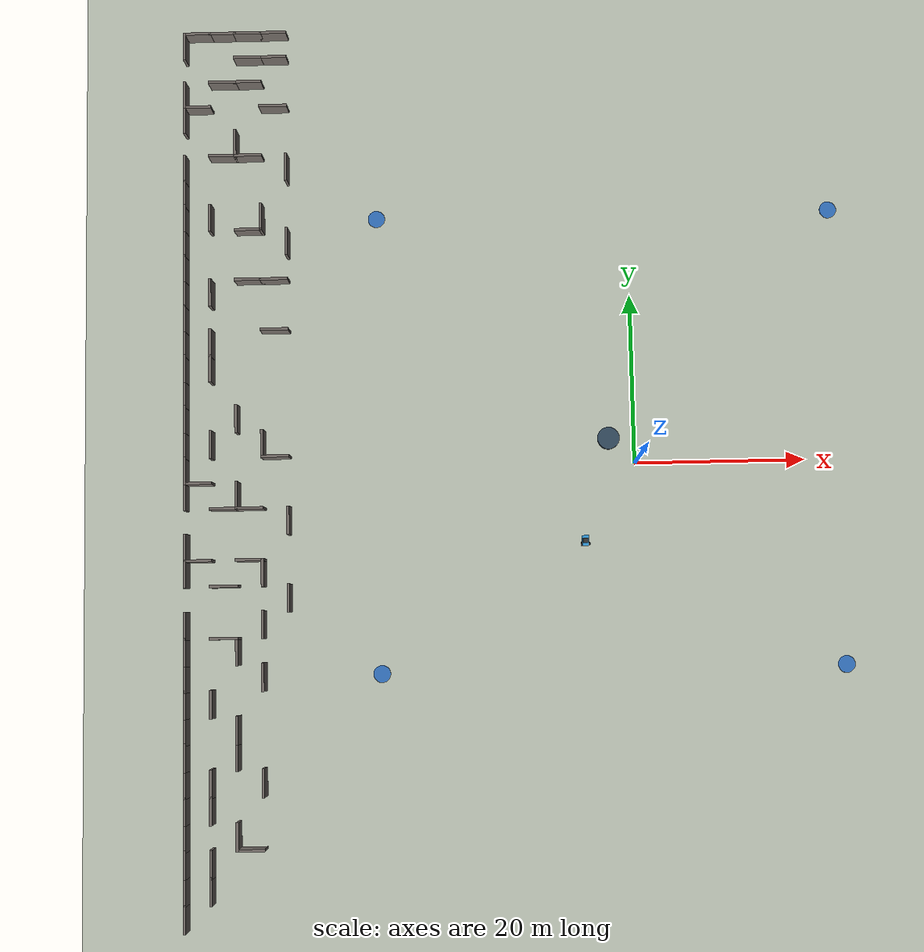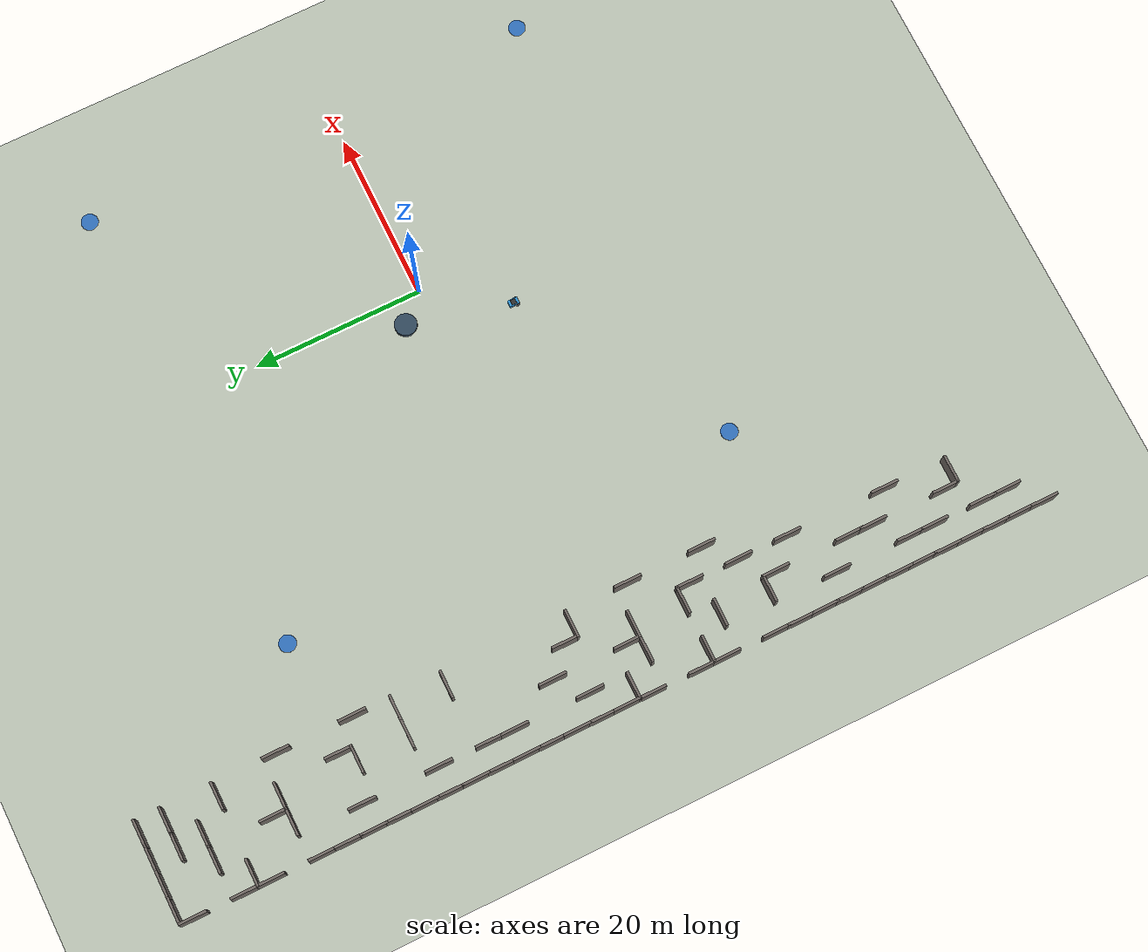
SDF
<sdf version="1.9">
 <world name="swap_world">
  <model name="ground_plane">
   <static>true</static>
   <link name="link">
    <collision name="collision">
     <geometry><plane><normal>0 0 1</normal><size>125 125</size></plane></geometry>
    </collision>
    <visual name="visual">
     <geometry><plane><normal>0 0 1</normal><size>125 125</size></plane></geometry>
     <material><ambient>0.75 0.78 0.72 1</ambient><diffuse>0.75 0.78 0.72 1</diffuse></material>
    </visual>
   </link>
  </model>
  <model name="warehouse">
   <static>true</static>
   <link name="link">
    <pose>-3.00 3.00 0.25 0 0 0</pose>
    <visual name="v">
     <geometry><cylinder><radius>1.3</radius><length>0.5</length></cylinder></geometry>
     <material><ambient>0.2 0.29 0.37 1</ambient><diffuse>0.2 0.29 0.37 1</diffuse></material>
    </visual>
   </link>
  </model>
  <model name="pad_0">
   <static>true</static>
   <link name="link">
    <pose>-30.00 30.00 0.01 0 0 0</pose>
    <visual name="visual">
     <geometry><cylinder><radius>1.0</radius><length>0.02</length></cylinder></geometry>
     <material><ambient>0.2 0.45 0.75 1</ambient><diffuse>0.2 0.45 0.75 1</diffuse></material>
    </visual>
   </link>
  </model>
  <model name="pad_1">
   <static>true</static>
   <link name="link">
    <pose>24.00 30.00 0.01 0 0 0</pose>
    <visual name="visual">
     <geometry><cylinder><radius>1.0</radius><length>0.02</length></cylinder></geometry>
     <material><ambient>0.2 0.45 0.75 1</ambient><diffuse>0.2 0.45 0.75 1</diffuse></material>
    </visual>
   </link>
  </model>
  <model name="pad_2">
   <static>true</static>
   <link name="link">
    <pose>-30.00 -24.00 0.01 0 0 0</pose>
    <visual name="visual">
     <geometry><cylinder><radius>1.0</radius><length>0.02</length></cylinder></geometry>
     <material><ambient>0.2 0.45 0.75 1</ambient><diffuse>0.2 0.45 0.75 1</diffuse></material>
    </visual>
   </link>
  </model>
  <model name="pad_3">
   <static>true</static>
   <link name="link">
    <pose>24.00 -24.00 0.01 0 0 0</pose>
    <visual name="visual">
     <geometry><cylinder><radius>1.0</radius><length>0.02</length></cylinder></geometry>
     <material><ambient>0.2 0.45 0.75 1</ambient><diffuse>0.2 0.45 0.75 1</diffuse></material>
    </visual>
   </link>
  </model>
  <model name="wall_0">
   <static>true</static>
   <link name="l">
    <pose>-52.50 51.00 1.25 0 0 1.5708</pose>
    <collision name="c"><geometry><box><size>3.30 0.3 2.5</size></box></geometry></collision>
    <visual name="v">
     <geometry><box><size>3.30 0.3 2.5</size></box></geometry>
     <material><ambient>0.45 0.42 0.4 1</ambient><diffuse>0.45 0.42 0.4 1</diffuse></material>
    </visual>
   </link>
  </model>
  <model name="wall_1">
   <static>true</static>
   <link name="l">
    <pose>-51.00 52.50 1.25 0 0 0.0000</pose>
    <collision name="c"><geometry><box><size>3.30 0.3 2.5</size></box></geometry></collision>
    <visual name="v">
     <geometry><box><size>3.30 0.3 2.5</size></box></geometry>
     <material><ambient>0.45 0.42 0.4 1</ambient><diffuse>0.45 0.42 0.4 1</diffuse></material>
    </visual>
   </link>
  </model>
  <model name="wall_2">
   <static>true</static>
   <link name="l">
    <pose>-52.50 45.00 1.25 0 0 1.5708</pose>
    <collision name="c"><geometry><box><size>3.30 0.3 2.5</size></box></geometry></collision>
    <visual name="v">
     <geometry><box><size>3.30 0.3 2.5</size></box></geometry>
     <material><ambient>0.45 0.42 0.4 1</ambient><diffuse>0.45 0.42 0.4 1</diffuse></material>
    </visual>
   </link>
  </model>
  <model name="wall_3">
   <static>true</static>
   <link name="l">
    <pose>-52.50 42.00 1.25 0 0 1.5708</pose>
    <collision name="c"><geometry><box><size>3.30 0.3 2.5</size></box></geometry></collision>
    <visual name="v">
     <geometry><box><size>3.30 0.3 2.5</size></box></geometry>
     <material><ambient>0.45 0.42 0.4 1</ambient><diffuse>0.45 0.42 0.4 1</diffuse></material>
    </visual>
   </link>
  </model>
  <model name="wall_4">
   <static>true</static>
   <link name="l">
    <pose>-51.00 43.50 1.25 0 0 0.0000</pose>
    <collision name="c"><geometry><box><size>3.30 0.3 2.5</size></box></geometry></collision>
    <visual name="v">
     <geometry><box><size>3.30 0.3 2.5</size></box></geometry>
     <material><ambient>0.45 0.42 0.4 1</ambient><diffuse>0.45 0.42 0.4 1</diffuse></material>
    </visual>
   </link>
  </model>
  <model name="wall_5">
   <static>true</static>
   <link name="l">
    <pose>-52.50 36.00 1.25 0 0 1.5708</pose>
    <collision name="c"><geometry><box><size>3.30 0.3 2.5</size></box></geometry></collision>
    <visual name="v">
     <geometry><box><size>3.30 0.3 2.5</size></box></geometry>
     <material><ambient>0.45 0.42 0.4 1</ambient><diffuse>0.45 0.42 0.4 1</diffuse></material>
    </visual>
   </link>
  </model>
  <model name="wall_6">
   <static>true</static>
   <link name="l">
    <pose>-52.50 33.00 1.25 0 0 1.5708</pose>
    <collision name="c"><geometry><box><size>3.30 0.3 2.5</size></box></geometry></collision>
    <visual name="v">
     <geometry><box><size>3.30 0.3 2.5</size></box></geometry>
     <material><ambient>0.45 0.42 0.4 1</ambient><diffuse>0.45 0.42 0.4 1</diffuse></material>
    </visual>
   </link>
  </model>
  <model name="wall_7">
   <static>true</static>
   <link name="l">
    <pose>-49.50 30.00 1.25 0 0 1.5708</pose>
    <collision name="c"><geometry><box><size>3.30 0.3 2.5</size></box></geometry></collision>
    <visual name="v">
     <geometry><box><size>3.30 0.3 2.5</size></box></geometry>
     <material><ambient>0.45 0.42 0.4 1</ambient><diffuse>0.45 0.42 0.4 1</diffuse></material>
    </visual>
   </link>
  </model>
  <model name="wall_8">
   <static>true</static>
   <link name="l">
    <pose>-52.50 30.00 1.25 0 0 1.5708</pose>
    <collision name="c"><geometry><box><size>3.30 0.3 2.5</size></box></geometry></collision>
    <visual name="v">
     <geometry><box><size>3.30 0.3 2.5</size></box></geometry>
     <material><ambient>0.45 0.42 0.4 1</ambient><diffuse>0.45 0.42 0.4 1</diffuse></material>
    </visual>
   </link>
  </model>
  <model name="wall_9">
   <static>true</static>
   <link name="l">
    <pose>-52.50 27.00 1.25 0 0 1.5708</pose>
    <collision name="c"><geometry><box><size>3.30 0.3 2.5</size></box></geometry></collision>
    <visual name="v">
     <geometry><box><size>3.30 0.3 2.5</size></box></geometry>
     <material><ambient>0.45 0.42 0.4 1</ambient><diffuse>0.45 0.42 0.4 1</diffuse></material>
    </visual>
   </link>
  </model>
  <model name="wall_10">
   <static>true</static>
   <link name="l">
    <pose>-52.50 24.00 1.25 0 0 1.5708</pose>
    <collision name="c"><geometry><box><size>3.30 0.3 2.5</size></box></geometry></collision>
    <visual name="v">
     <geometry><box><size>3.30 0.3 2.5</size></box></geometry>
     <material><ambient>0.45 0.42 0.4 1</ambient><diffuse>0.45 0.42 0.4 1</diffuse></material>
    </visual>
   </link>
  </model>
  <model name="wall_11">
   <static>true</static>
   <link name="l">
    <pose>-49.50 21.00 1.25 0 0 1.5708</pose>
    <collision name="c"><geometry><box><size>3.30 0.3 2.5</size></box></geometry></collision>
    <visual name="v">
     <geometry><box><size>3.30 0.3 2.5</size></box></geometry>
     <material><ambient>0.45 0.42 0.4 1</ambient><diffuse>0.45 0.42 0.4 1</diffuse></material>
    </visual>
   </link>
  </model>
  <model name="wall_12">
   <static>true</static>
   <link name="l">
    <pose>-52.50 21.00 1.25 0 0 1.5708</pose>
    <collision name="c"><geometry><box><size>3.30 0.3 2.5</size></box></geometry></collision>
    <visual name="v">
     <geometry><box><size>3.30 0.3 2.5</size></box></geometry>
     <material><ambient>0.45 0.42 0.4 1</ambient><diffuse>0.45 0.42 0.4 1</diffuse></material>
    </visual>
   </link>
  </model>
  <model name="wall_13">
   <static>true</static>
   <link name="l">
    <pose>-52.50 18.00 1.25 0 0 1.5708</pose>
    <collision name="c"><geometry><box><size>3.30 0.3 2.5</size></box></geometry></collision>
    <visual name="v">
     <geometry><box><size>3.30 0.3 2.5</size></box></geometry>
     <material><ambient>0.45 0.42 0.4 1</ambient><diffuse>0.45 0.42 0.4 1</diffuse></material>
    </visual>
   </link>
  </model>
  <model name="wall_14">
   <static>true</static>
   <link name="l">
    <pose>-49.50 15.00 1.25 0 0 1.5708</pose>
    <collision name="c"><geometry><box><size>3.30 0.3 2.5</size></box></geometry></collision>
    <visual name="v">
     <geometry><box><size>3.30 0.3 2.5</size></box></geometry>
     <material><ambient>0.45 0.42 0.4 1</ambient><diffuse>0.45 0.42 0.4 1</diffuse></material>
    </visual>
   </link>
  </model>
  <model name="wall_15">
   <static>true</static>
   <link name="l">
    <pose>-52.50 15.00 1.25 0 0 1.5708</pose>
    <collision name="c"><geometry><box><size>3.30 0.3 2.5</size></box></geometry></collision>
    <visual name="v">
     <geometry><box><size>3.30 0.3 2.5</size></box></geometry>
     <material><ambient>0.45 0.42 0.4 1</ambient><diffuse>0.45 0.42 0.4 1</diffuse></material>
    </visual>
   </link>
  </model>
  <model name="wall_16">
   <static>true</static>
   <link name="l">
    <pose>-49.50 12.00 1.25 0 0 1.5708</pose>
    <collision name="c"><geometry><box><size>3.30 0.3 2.5</size></box></geometry></collision>
    <visual name="v">
     <geometry><box><size>3.30 0.3 2.5</size></box></geometry>
     <material><ambient>0.45 0.42 0.4 1</ambient><diffuse>0.45 0.42 0.4 1</diffuse></material>
    </visual>
   </link>
  </model>
  <model name="wall_17">
   <static>true</static>
   <link name="l">
    <pose>-52.50 12.00 1.25 0 0 1.5708</pose>
    <collision name="c"><geometry><box><size>3.30 0.3 2.5</size></box></geometry></collision>
    <visual name="v">
     <geometry><box><size>3.30 0.3 2.5</size></box></geometry>
     <material><ambient>0.45 0.42 0.4 1</ambient><diffuse>0.45 0.42 0.4 1</diffuse></material>
    </visual>
   </link>
  </model>
  <model name="wall_18">
   <static>true</static>
   <link name="l">
    <pose>-52.50 9.00 1.25 0 0 1.5708</pose>
    <collision name="c"><geometry><box><size>3.30 0.3 2.5</size></box></geometry></collision>
    <visual name="v">
     <geometry><box><size>3.30 0.3 2.5</size></box></geometry>
     <material><ambient>0.45 0.42 0.4 1</ambient><diffuse>0.45 0.42 0.4 1</diffuse></material>
    </visual>
   </link>
  </model>
  <model name="wall_19">
   <static>true</static>
   <link name="l">
    <pose>-52.50 6.00 1.25 0 0 1.5708</pose>
    <collision name="c"><geometry><box><size>3.30 0.3 2.5</size></box></geometry></collision>
    <visual name="v">
     <geometry><box><size>3.30 0.3 2.5</size></box></geometry>
     <material><ambient>0.45 0.42 0.4 1</ambient><diffuse>0.45 0.42 0.4 1</diffuse></material>
    </visual>
   </link>
  </model>
  <model name="wall_20">
   <static>true</static>
   <link name="l">
    <pose>-49.50 3.00 1.25 0 0 1.5708</pose>
    <collision name="c"><geometry><box><size>3.30 0.3 2.5</size></box></geometry></collision>
    <visual name="v">
     <geometry><box><size>3.30 0.3 2.5</size></box></geometry>
     <material><ambient>0.45 0.42 0.4 1</ambient><diffuse>0.45 0.42 0.4 1</diffuse></material>
    </visual>
   </link>
  </model>
  <model name="wall_21">
   <static>true</static>
   <link name="l">
    <pose>-52.50 3.00 1.25 0 0 1.5708</pose>
    <collision name="c"><geometry><box><size>3.30 0.3 2.5</size></box></geometry></collision>
    <visual name="v">
     <geometry><box><size>3.30 0.3 2.5</size></box></geometry>
     <material><ambient>0.45 0.42 0.4 1</ambient><diffuse>0.45 0.42 0.4 1</diffuse></material>
    </visual>
   </link>
  </model>
  <model name="wall_22">
   <static>true</static>
   <link name="l">
    <pose>-52.50 -0.00 1.25 0 0 1.5708</pose>
    <collision name="c"><geometry><box><size>3.30 0.3 2.5</size></box></geometry></collision>
    <visual name="v">
     <geometry><box><size>3.30 0.3 2.5</size></box></geometry>
     <material><ambient>0.45 0.42 0.4 1</ambient><diffuse>0.45 0.42 0.4 1</diffuse></material>
    </visual>
   </link>
  </model>
  <model name="wall_23">
   <static>true</static>
   <link name="l">
    <pose>-52.50 -3.00 1.25 0 0 1.5708</pose>
    <collision name="c"><geometry><box><size>3.30 0.3 2.5</size></box></geometry></collision>
    <visual name="v">
     <geometry><box><size>3.30 0.3 2.5</size></box></geometry>
     <material><ambient>0.45 0.42 0.4 1</ambient><diffuse>0.45 0.42 0.4 1</diffuse></material>
    </visual>
   </link>
  </model>
  <model name="wall_24">
   <static>true</static>
   <link name="l">
    <pose>-51.00 -1.50 1.25 0 0 0.0000</pose>
    <collision name="c"><geometry><box><size>3.30 0.3 2.5</size></box></geometry></collision>
    <visual name="v">
     <geometry><box><size>3.30 0.3 2.5</size></box></geometry>
     <material><ambient>0.45 0.42 0.4 1</ambient><diffuse>0.45 0.42 0.4 1</diffuse></material>
    </visual>
   </link>
  </model>
  <model name="wall_25">
   <static>true</static>
   <link name="l">
    <pose>-52.50 -9.00 1.25 0 0 1.5708</pose>
    <collision name="c"><geometry><box><size>3.30 0.3 2.5</size></box></geometry></collision>
    <visual name="v">
     <geometry><box><size>3.30 0.3 2.5</size></box></geometry>
     <material><ambient>0.45 0.42 0.4 1</ambient><diffuse>0.45 0.42 0.4 1</diffuse></material>
    </visual>
   </link>
  </model>
  <model name="wall_26">
   <static>true</static>
   <link name="l">
    <pose>-52.50 -12.00 1.25 0 0 1.5708</pose>
    <collision name="c"><geometry><box><size>3.30 0.3 2.5</size></box></geometry></collision>
    <visual name="v">
     <geometry><box><size>3.30 0.3 2.5</size></box></geometry>
     <material><ambient>0.45 0.42 0.4 1</ambient><diffuse>0.45 0.42 0.4 1</diffuse></material>
    </visual>
   </link>
  </model>
  <model name="wall_27">
   <static>true</static>
   <link name="l">
    <pose>-51.00 -10.50 1.25 0 0 0.0000</pose>
    <collision name="c"><geometry><box><size>3.30 0.3 2.5</size></box></geometry></collision>
    <visual name="v">
     <geometry><box><size>3.30 0.3 2.5</size></box></geometry>
     <material><ambient>0.45 0.42 0.4 1</ambient><diffuse>0.45 0.42 0.4 1</diffuse></material>
    </visual>
   </link>
  </model>
  <model name="wall_28">
   <static>true</static>
   <link name="l">
    <pose>-52.50 -18.00 1.25 0 0 1.5708</pose>
    <collision name="c"><geometry><box><size>3.30 0.3 2.5</size></box></geometry></collision>
    <visual name="v">
     <geometry><box><size>3.30 0.3 2.5</size></box></geometry>
     <material><ambient>0.45 0.42 0.4 1</ambient><diffuse>0.45 0.42 0.4 1</diffuse></material>
    </visual>
   </link>
  </model>
  <model name="wall_29">
   <static>true</static>
   <link name="l">
    <pose>-52.50 -21.00 1.25 0 0 1.5708</pose>
    <collision name="c"><geometry><box><size>3.30 0.3 2.5</size></box></geometry></collision>
    <visual name="v">
     <geometry><box><size>3.30 0.3 2.5</size></box></geometry>
     <material><ambient>0.45 0.42 0.4 1</ambient><diffuse>0.45 0.42 0.4 1</diffuse></material>
    </visual>
   </link>
  </model>
  <model name="wall_30">
   <static>true</static>
   <link name="l">
    <pose>-52.50 -24.00 1.25 0 0 1.5708</pose>
    <collision name="c"><geometry><box><size>3.30 0.3 2.5</size></box></geometry></collision>
    <visual name="v">
     <geometry><box><size>3.30 0.3 2.5</size></box></geometry>
     <material><ambient>0.45 0.42 0.4 1</ambient><diffuse>0.45 0.42 0.4 1</diffuse></material>
    </visual>
   </link>
  </model>
  <model name="wall_31">
   <static>true</static>
   <link name="l">
    <pose>-49.50 -27.00 1.25 0 0 1.5708</pose>
    <collision name="c"><geometry><box><size>3.30 0.3 2.5</size></box></geometry></collision>
    <visual name="v">
     <geometry><box><size>3.30 0.3 2.5</size></box></geometry>
     <material><ambient>0.45 0.42 0.4 1</ambient><diffuse>0.45 0.42 0.4 1</diffuse></material>
    </visual>
   </link>
  </model>
  <model name="wall_32">
   <static>true</static>
   <link name="l">
    <pose>-52.50 -27.00 1.25 0 0 1.5708</pose>
    <collision name="c"><geometry><box><size>3.30 0.3 2.5</size></box></geometry></collision>
    <visual name="v">
     <geometry><box><size>3.30 0.3 2.5</size></box></geometry>
     <material><ambient>0.45 0.42 0.4 1</ambient><diffuse>0.45 0.42 0.4 1</diffuse></material>
    </visual>
   </link>
  </model>
  <model name="wall_33">
   <static>true</static>
   <link name="l">
    <pose>-52.50 -30.00 1.25 0 0 1.5708</pose>
    <collision name="c"><geometry><box><size>3.30 0.3 2.5</size></box></geometry></collision>
    <visual name="v">
     <geometry><box><size>3.30 0.3 2.5</size></box></geometry>
     <material><ambient>0.45 0.42 0.4 1</ambient><diffuse>0.45 0.42 0.4 1</diffuse></material>
    </visual>
   </link>
  </model>
  <model name="wall_34">
   <static>true</static>
   <link name="l">
    <pose>-52.50 -33.00 1.25 0 0 1.5708</pose>
    <collision name="c"><geometry><box><size>3.30 0.3 2.5</size></box></geometry></collision>
    <visual name="v">
     <geometry><box><size>3.30 0.3 2.5</size></box></geometry>
     <material><ambient>0.45 0.42 0.4 1</ambient><diffuse>0.45 0.42 0.4 1</diffuse></material>
    </visual>
   </link>
  </model>
  <model name="wall_35">
   <static>true</static>
   <link name="l">
    <pose>-49.50 -36.00 1.25 0 0 1.5708</pose>
    <collision name="c"><geometry><box><size>3.30 0.3 2.5</size></box></geometry></collision>
    <visual name="v">
     <geometry><box><size>3.30 0.3 2.5</size></box></geometry>
     <material><ambient>0.45 0.42 0.4 1</ambient><diffuse>0.45 0.42 0.4 1</diffuse></material>
    </visual>
   </link>
  </model>
  <model name="wall_36">
   <static>true</static>
   <link name="l">
    <pose>-52.50 -36.00 1.25 0 0 1.5708</pose>
    <collision name="c"><geometry><box><size>3.30 0.3 2.5</size></box></geometry></collision>
    <visual name="v">
     <geometry><box><size>3.30 0.3 2.5</size></box></geometry>
     <material><ambient>0.45 0.42 0.4 1</ambient><diffuse>0.45 0.42 0.4 1</diffuse></material>
    </visual>
   </link>
  </model>
  <model name="wall_37">
   <static>true</static>
   <link name="l">
    <pose>-49.50 -39.00 1.25 0 0 1.5708</pose>
    <collision name="c"><geometry><box><size>3.30 0.3 2.5</size></box></geometry></collision>
    <visual name="v">
     <geometry><box><size>3.30 0.3 2.5</size></box></geometry>
     <material><ambient>0.45 0.42 0.4 1</ambient><diffuse>0.45 0.42 0.4 1</diffuse></material>
    </visual>
   </link>
  </model>
  <model name="wall_38">
   <static>true</static>
   <link name="l">
    <pose>-52.50 -39.00 1.25 0 0 1.5708</pose>
    <collision name="c"><geometry><box><size>3.30 0.3 2.5</size></box></geometry></collision>
    <visual name="v">
     <geometry><box><size>3.30 0.3 2.5</size></box></geometry>
     <material><ambient>0.45 0.42 0.4 1</ambient><diffuse>0.45 0.42 0.4 1</diffuse></material>
    </visual>
   </link>
  </model>
  <model name="wall_39">
   <static>true</static>
   <link name="l">
    <pose>-52.50 -42.00 1.25 0 0 1.5708</pose>
    <collision name="c"><geometry><box><size>3.30 0.3 2.5</size></box></geometry></collision>
    <visual name="v">
     <geometry><box><size>3.30 0.3 2.5</size></box></geometry>
     <material><ambient>0.45 0.42 0.4 1</ambient><diffuse>0.45 0.42 0.4 1</diffuse></material>
    </visual>
   </link>
  </model>
  <model name="wall_40">
   <static>true</static>
   <link name="l">
    <pose>-49.50 -45.00 1.25 0 0 1.5708</pose>
    <collision name="c"><geometry><box><size>3.30 0.3 2.5</size></box></geometry></collision>
    <visual name="v">
     <geometry><box><size>3.30 0.3 2.5</size></box></geometry>
     <material><ambient>0.45 0.42 0.4 1</ambient><diffuse>0.45 0.42 0.4 1</diffuse></material>
    </visual>
   </link>
  </model>
  <model name="wall_41">
   <static>true</static>
   <link name="l">
    <pose>-52.50 -45.00 1.25 0 0 1.5708</pose>
    <collision name="c"><geometry><box><size>3.30 0.3 2.5</size></box></geometry></collision>
    <visual name="v">
     <geometry><box><size>3.30 0.3 2.5</size></box></geometry>
     <material><ambient>0.45 0.42 0.4 1</ambient><diffuse>0.45 0.42 0.4 1</diffuse></material>
    </visual>
   </link>
  </model>
  <model name="wall_42">
   <static>true</static>
   <link name="l">
    <pose>-49.50 -48.00 1.25 0 0 1.5708</pose>
    <collision name="c"><geometry><box><size>3.30 0.3 2.5</size></box></geometry></collision>
    <visual name="v">
     <geometry><box><size>3.30 0.3 2.5</size></box></geometry>
     <material><ambient>0.45 0.42 0.4 1</ambient><diffuse>0.45 0.42 0.4 1</diffuse></material>
    </visual>
   </link>
  </model>
  <model name="wall_43">
   <static>true</static>
   <link name="l">
    <pose>-52.50 -48.00 1.25 0 0 1.5708</pose>
    <collision name="c"><geometry><box><size>3.30 0.3 2.5</size></box></geometry></collision>
    <visual name="v">
     <geometry><box><size>3.30 0.3 2.5</size></box></geometry>
     <material><ambient>0.45 0.42 0.4 1</ambient><diffuse>0.45 0.42 0.4 1</diffuse></material>
    </visual>
   </link>
  </model>
  <model name="wall_44">
   <static>true</static>
   <link name="l">
    <pose>-52.50 -51.00 1.25 0 0 1.5708</pose>
    <collision name="c"><geometry><box><size>3.30 0.3 2.5</size></box></geometry></collision>
    <visual name="v">
     <geometry><box><size>3.30 0.3 2.5</size></box></geometry>
     <material><ambient>0.45 0.42 0.4 1</ambient><diffuse>0.45 0.42 0.4 1</diffuse></material>
    </visual>
   </link>
  </model>
  <model name="wall_45">
   <static>true</static>
   <link name="l">
    <pose>-48.00 52.50 1.25 0 0 0.0000</pose>
    <collision name="c"><geometry><box><size>3.30 0.3 2.5</size></box></geometry></collision>
    <visual name="v">
     <geometry><box><size>3.30 0.3 2.5</size></box></geometry>
     <material><ambient>0.45 0.42 0.4 1</ambient><diffuse>0.45 0.42 0.4 1</diffuse></material>
    </visual>
   </link>
  </model>
  <model name="wall_46">
   <static>true</static>
   <link name="l">
    <pose>-48.00 46.50 1.25 0 0 0.0000</pose>
    <collision name="c"><geometry><box><size>3.30 0.3 2.5</size></box></geometry></collision>
    <visual name="v">
     <geometry><box><size>3.30 0.3 2.5</size></box></geometry>
     <material><ambient>0.45 0.42 0.4 1</ambient><diffuse>0.45 0.42 0.4 1</diffuse></material>
    </visual>
   </link>
  </model>
  <model name="wall_47">
   <static>true</static>
   <link name="l">
    <pose>-46.50 39.00 1.25 0 0 1.5708</pose>
    <collision name="c"><geometry><box><size>3.30 0.3 2.5</size></box></geometry></collision>
    <visual name="v">
     <geometry><box><size>3.30 0.3 2.5</size></box></geometry>
     <material><ambient>0.45 0.42 0.4 1</ambient><diffuse>0.45 0.42 0.4 1</diffuse></material>
    </visual>
   </link>
  </model>
  <model name="wall_48">
   <static>true</static>
   <link name="l">
    <pose>-48.00 37.50 1.25 0 0 0.0000</pose>
    <collision name="c"><geometry><box><size>3.30 0.3 2.5</size></box></geometry></collision>
    <visual name="v">
     <geometry><box><size>3.30 0.3 2.5</size></box></geometry>
     <material><ambient>0.45 0.42 0.4 1</ambient><diffuse>0.45 0.42 0.4 1</diffuse></material>
    </visual>
   </link>
  </model>
  <model name="wall_49">
   <static>true</static>
   <link name="l">
    <pose>-46.50 6.00 1.25 0 0 1.5708</pose>
    <collision name="c"><geometry><box><size>3.30 0.3 2.5</size></box></geometry></collision>
    <visual name="v">
     <geometry><box><size>3.30 0.3 2.5</size></box></geometry>
     <material><ambient>0.45 0.42 0.4 1</ambient><diffuse>0.45 0.42 0.4 1</diffuse></material>
    </visual>
   </link>
  </model>
  <model name="wall_50">
   <static>true</static>
   <link name="l">
    <pose>-46.50 -3.00 1.25 0 0 1.5708</pose>
    <collision name="c"><geometry><box><size>3.30 0.3 2.5</size></box></geometry></collision>
    <visual name="v">
     <geometry><box><size>3.30 0.3 2.5</size></box></geometry>
     <material><ambient>0.45 0.42 0.4 1</ambient><diffuse>0.45 0.42 0.4 1</diffuse></material>
    </visual>
   </link>
  </model>
  <model name="wall_51">
   <static>true</static>
   <link name="l">
    <pose>-48.00 -4.50 1.25 0 0 0.0000</pose>
    <collision name="c"><geometry><box><size>3.30 0.3 2.5</size></box></geometry></collision>
    <visual name="v">
     <geometry><box><size>3.30 0.3 2.5</size></box></geometry>
     <material><ambient>0.45 0.42 0.4 1</ambient><diffuse>0.45 0.42 0.4 1</diffuse></material>
    </visual>
   </link>
  </model>
  <model name="wall_52">
   <static>true</static>
   <link name="l">
    <pose>-48.00 -13.50 1.25 0 0 0.0000</pose>
    <collision name="c"><geometry><box><size>3.30 0.3 2.5</size></box></geometry></collision>
    <visual name="v">
     <geometry><box><size>3.30 0.3 2.5</size></box></geometry>
     <material><ambient>0.45 0.42 0.4 1</ambient><diffuse>0.45 0.42 0.4 1</diffuse></material>
    </visual>
   </link>
  </model>
  <model name="wall_53">
   <static>true</static>
   <link name="l">
    <pose>-46.50 -21.00 1.25 0 0 1.5708</pose>
    <collision name="c"><geometry><box><size>3.30 0.3 2.5</size></box></geometry></collision>
    <visual name="v">
     <geometry><box><size>3.30 0.3 2.5</size></box></geometry>
     <material><ambient>0.45 0.42 0.4 1</ambient><diffuse>0.45 0.42 0.4 1</diffuse></material>
    </visual>
   </link>
  </model>
  <model name="wall_54">
   <static>true</static>
   <link name="l">
    <pose>-48.00 -19.50 1.25 0 0 0.0000</pose>
    <collision name="c"><geometry><box><size>3.30 0.3 2.5</size></box></geometry></collision>
    <visual name="v">
     <geometry><box><size>3.30 0.3 2.5</size></box></geometry>
     <material><ambient>0.45 0.42 0.4 1</ambient><diffuse>0.45 0.42 0.4 1</diffuse></material>
    </visual>
   </link>
  </model>
  <model name="wall_55">
   <static>true</static>
   <link name="l">
    <pose>-46.50 -30.00 1.25 0 0 1.5708</pose>
    <collision name="c"><geometry><box><size>3.30 0.3 2.5</size></box></geometry></collision>
    <visual name="v">
     <geometry><box><size>3.30 0.3 2.5</size></box></geometry>
     <material><ambient>0.45 0.42 0.4 1</ambient><diffuse>0.45 0.42 0.4 1</diffuse></material>
    </visual>
   </link>
  </model>
  <model name="wall_56">
   <static>true</static>
   <link name="l">
    <pose>-46.50 -33.00 1.25 0 0 1.5708</pose>
    <collision name="c"><geometry><box><size>3.30 0.3 2.5</size></box></geometry></collision>
    <visual name="v">
     <geometry><box><size>3.30 0.3 2.5</size></box></geometry>
     <material><ambient>0.45 0.42 0.4 1</ambient><diffuse>0.45 0.42 0.4 1</diffuse></material>
    </visual>
   </link>
  </model>
  <model name="wall_57">
   <static>true</static>
   <link name="l">
    <pose>-46.50 -42.00 1.25 0 0 1.5708</pose>
    <collision name="c"><geometry><box><size>3.30 0.3 2.5</size></box></geometry></collision>
    <visual name="v">
     <geometry><box><size>3.30 0.3 2.5</size></box></geometry>
     <material><ambient>0.45 0.42 0.4 1</ambient><diffuse>0.45 0.42 0.4 1</diffuse></material>
    </visual>
   </link>
  </model>
  <model name="wall_58">
   <static>true</static>
   <link name="l">
    <pose>-45.00 52.50 1.25 0 0 0.0000</pose>
    <collision name="c"><geometry><box><size>3.30 0.3 2.5</size></box></geometry></collision>
    <visual name="v">
     <geometry><box><size>3.30 0.3 2.5</size></box></geometry>
     <material><ambient>0.45 0.42 0.4 1</ambient><diffuse>0.45 0.42 0.4 1</diffuse></material>
    </visual>
   </link>
  </model>
  <model name="wall_59">
   <static>true</static>
   <link name="l">
    <pose>-45.00 49.50 1.25 0 0 0.0000</pose>
    <collision name="c"><geometry><box><size>3.30 0.3 2.5</size></box></geometry></collision>
    <visual name="v">
     <geometry><box><size>3.30 0.3 2.5</size></box></geometry>
     <material><ambient>0.45 0.42 0.4 1</ambient><diffuse>0.45 0.42 0.4 1</diffuse></material>
    </visual>
   </link>
  </model>
  <model name="wall_60">
   <static>true</static>
   <link name="l">
    <pose>-45.00 46.50 1.25 0 0 0.0000</pose>
    <collision name="c"><geometry><box><size>3.30 0.3 2.5</size></box></geometry></collision>
    <visual name="v">
     <geometry><box><size>3.30 0.3 2.5</size></box></geometry>
     <material><ambient>0.45 0.42 0.4 1</ambient><diffuse>0.45 0.42 0.4 1</diffuse></material>
    </visual>
   </link>
  </model>
  <model name="wall_61">
   <static>true</static>
   <link name="l">
    <pose>-45.00 37.50 1.25 0 0 0.0000</pose>
    <collision name="c"><geometry><box><size>3.30 0.3 2.5</size></box></geometry></collision>
    <visual name="v">
     <geometry><box><size>3.30 0.3 2.5</size></box></geometry>
     <material><ambient>0.45 0.42 0.4 1</ambient><diffuse>0.45 0.42 0.4 1</diffuse></material>
    </visual>
   </link>
  </model>
  <model name="wall_62">
   <static>true</static>
   <link name="l">
    <pose>-43.50 30.00 1.25 0 0 1.5708</pose>
    <collision name="c"><geometry><box><size>3.30 0.3 2.5</size></box></geometry></collision>
    <visual name="v">
     <geometry><box><size>3.30 0.3 2.5</size></box></geometry>
     <material><ambient>0.45 0.42 0.4 1</ambient><diffuse>0.45 0.42 0.4 1</diffuse></material>
    </visual>
   </link>
  </model>
  <model name="wall_63">
   <static>true</static>
   <link name="l">
    <pose>-45.00 28.50 1.25 0 0 0.0000</pose>
    <collision name="c"><geometry><box><size>3.30 0.3 2.5</size></box></geometry></collision>
    <visual name="v">
     <geometry><box><size>3.30 0.3 2.5</size></box></geometry>
     <material><ambient>0.45 0.42 0.4 1</ambient><diffuse>0.45 0.42 0.4 1</diffuse></material>
    </visual>
   </link>
  </model>
  <model name="wall_64">
   <static>true</static>
   <link name="l">
    <pose>-45.00 22.50 1.25 0 0 0.0000</pose>
    <collision name="c"><geometry><box><size>3.30 0.3 2.5</size></box></geometry></collision>
    <visual name="v">
     <geometry><box><size>3.30 0.3 2.5</size></box></geometry>
     <material><ambient>0.45 0.42 0.4 1</ambient><diffuse>0.45 0.42 0.4 1</diffuse></material>
    </visual>
   </link>
  </model>
  <model name="wall_65">
   <static>true</static>
   <link name="l">
    <pose>-43.50 3.00 1.25 0 0 1.5708</pose>
    <collision name="c"><geometry><box><size>3.30 0.3 2.5</size></box></geometry></collision>
    <visual name="v">
     <geometry><box><size>3.30 0.3 2.5</size></box></geometry>
     <material><ambient>0.45 0.42 0.4 1</ambient><diffuse>0.45 0.42 0.4 1</diffuse></material>
    </visual>
   </link>
  </model>
  <model name="wall_66">
   <static>true</static>
   <link name="l">
    <pose>-45.00 -4.50 1.25 0 0 0.0000</pose>
    <collision name="c"><geometry><box><size>3.30 0.3 2.5</size></box></geometry></collision>
    <visual name="v">
     <geometry><box><size>3.30 0.3 2.5</size></box></geometry>
     <material><ambient>0.45 0.42 0.4 1</ambient><diffuse>0.45 0.42 0.4 1</diffuse></material>
    </visual>
   </link>
  </model>
  <model name="wall_67">
   <static>true</static>
   <link name="l">
    <pose>-43.50 -12.00 1.25 0 0 1.5708</pose>
    <collision name="c"><geometry><box><size>3.30 0.3 2.5</size></box></geometry></collision>
    <visual name="v">
     <geometry><box><size>3.30 0.3 2.5</size></box></geometry>
     <material><ambient>0.45 0.42 0.4 1</ambient><diffuse>0.45 0.42 0.4 1</diffuse></material>
    </visual>
   </link>
  </model>
  <model name="wall_68">
   <static>true</static>
   <link name="l">
    <pose>-45.00 -10.50 1.25 0 0 0.0000</pose>
    <collision name="c"><geometry><box><size>3.30 0.3 2.5</size></box></geometry></collision>
    <visual name="v">
     <geometry><box><size>3.30 0.3 2.5</size></box></geometry>
     <material><ambient>0.45 0.42 0.4 1</ambient><diffuse>0.45 0.42 0.4 1</diffuse></material>
    </visual>
   </link>
  </model>
  <model name="wall_69">
   <static>true</static>
   <link name="l">
    <pose>-43.50 -18.00 1.25 0 0 1.5708</pose>
    <collision name="c"><geometry><box><size>3.30 0.3 2.5</size></box></geometry></collision>
    <visual name="v">
     <geometry><box><size>3.30 0.3 2.5</size></box></geometry>
     <material><ambient>0.45 0.42 0.4 1</ambient><diffuse>0.45 0.42 0.4 1</diffuse></material>
    </visual>
   </link>
  </model>
  <model name="wall_70">
   <static>true</static>
   <link name="l">
    <pose>-43.50 -24.00 1.25 0 0 1.5708</pose>
    <collision name="c"><geometry><box><size>3.30 0.3 2.5</size></box></geometry></collision>
    <visual name="v">
     <geometry><box><size>3.30 0.3 2.5</size></box></geometry>
     <material><ambient>0.45 0.42 0.4 1</ambient><diffuse>0.45 0.42 0.4 1</diffuse></material>
    </visual>
   </link>
  </model>
  <model name="wall_71">
   <static>true</static>
   <link name="l">
    <pose>-43.50 -36.00 1.25 0 0 1.5708</pose>
    <collision name="c"><geometry><box><size>3.30 0.3 2.5</size></box></geometry></collision>
    <visual name="v">
     <geometry><box><size>3.30 0.3 2.5</size></box></geometry>
     <material><ambient>0.45 0.42 0.4 1</ambient><diffuse>0.45 0.42 0.4 1</diffuse></material>
    </visual>
   </link>
  </model>
  <model name="wall_72">
   <static>true</static>
   <link name="l">
    <pose>-45.00 -43.50 1.25 0 0 0.0000</pose>
    <collision name="c"><geometry><box><size>3.30 0.3 2.5</size></box></geometry></collision>
    <visual name="v">
     <geometry><box><size>3.30 0.3 2.5</size></box></geometry>
     <material><ambient>0.45 0.42 0.4 1</ambient><diffuse>0.45 0.42 0.4 1</diffuse></material>
    </visual>
   </link>
  </model>
  <model name="wall_73">
   <static>true</static>
   <link name="l">
    <pose>-42.00 52.50 1.25 0 0 0.0000</pose>
    <collision name="c"><geometry><box><size>3.30 0.3 2.5</size></box></geometry></collision>
    <visual name="v">
     <geometry><box><size>3.30 0.3 2.5</size></box></geometry>
     <material><ambient>0.45 0.42 0.4 1</ambient><diffuse>0.45 0.42 0.4 1</diffuse></material>
    </visual>
   </link>
  </model>
  <model name="wall_74">
   <static>true</static>
   <link name="l">
    <pose>-42.00 49.50 1.25 0 0 0.0000</pose>
    <collision name="c"><geometry><box><size>3.30 0.3 2.5</size></box></geometry></collision>
    <visual name="v">
     <geometry><box><size>3.30 0.3 2.5</size></box></geometry>
     <material><ambient>0.45 0.42 0.4 1</ambient><diffuse>0.45 0.42 0.4 1</diffuse></material>
    </visual>
   </link>
  </model>
  <model name="wall_75">
   <static>true</static>
   <link name="l">
    <pose>-42.00 43.50 1.25 0 0 0.0000</pose>
    <collision name="c"><geometry><box><size>3.30 0.3 2.5</size></box></geometry></collision>
    <visual name="v">
     <geometry><box><size>3.30 0.3 2.5</size></box></geometry>
     <material><ambient>0.45 0.42 0.4 1</ambient><diffuse>0.45 0.42 0.4 1</diffuse></material>
    </visual>
   </link>
  </model>
  <model name="wall_76">
   <static>true</static>
   <link name="l">
    <pose>-40.50 36.00 1.25 0 0 1.5708</pose>
    <collision name="c"><geometry><box><size>3.30 0.3 2.5</size></box></geometry></collision>
    <visual name="v">
     <geometry><box><size>3.30 0.3 2.5</size></box></geometry>
     <material><ambient>0.45 0.42 0.4 1</ambient><diffuse>0.45 0.42 0.4 1</diffuse></material>
    </visual>
   </link>
  </model>
  <model name="wall_77">
   <static>true</static>
   <link name="l">
    <pose>-40.50 27.00 1.25 0 0 1.5708</pose>
    <collision name="c"><geometry><box><size>3.30 0.3 2.5</size></box></geometry></collision>
    <visual name="v">
     <geometry><box><size>3.30 0.3 2.5</size></box></geometry>
     <material><ambient>0.45 0.42 0.4 1</ambient><diffuse>0.45 0.42 0.4 1</diffuse></material>
    </visual>
   </link>
  </model>
  <model name="wall_78">
   <static>true</static>
   <link name="l">
    <pose>-42.00 22.50 1.25 0 0 0.0000</pose>
    <collision name="c"><geometry><box><size>3.30 0.3 2.5</size></box></geometry></collision>
    <visual name="v">
     <geometry><box><size>3.30 0.3 2.5</size></box></geometry>
     <material><ambient>0.45 0.42 0.4 1</ambient><diffuse>0.45 0.42 0.4 1</diffuse></material>
    </visual>
   </link>
  </model>
  <model name="wall_79">
   <static>true</static>
   <link name="l">
    <pose>-42.00 16.50 1.25 0 0 0.0000</pose>
    <collision name="c"><geometry><box><size>3.30 0.3 2.5</size></box></geometry></collision>
    <visual name="v">
     <geometry><box><size>3.30 0.3 2.5</size></box></geometry>
     <material><ambient>0.45 0.42 0.4 1</ambient><diffuse>0.45 0.42 0.4 1</diffuse></material>
    </visual>
   </link>
  </model>
  <model name="wall_80">
   <static>true</static>
   <link name="l">
    <pose>-42.00 1.50 1.25 0 0 0.0000</pose>
    <collision name="c"><geometry><box><size>3.30 0.3 2.5</size></box></geometry></collision>
    <visual name="v">
     <geometry><box><size>3.30 0.3 2.5</size></box></geometry>
     <material><ambient>0.45 0.42 0.4 1</ambient><diffuse>0.45 0.42 0.4 1</diffuse></material>
    </visual>
   </link>
  </model>
  <model name="wall_81">
   <static>true</static>
   <link name="l">
    <pose>-40.50 -6.00 1.25 0 0 1.5708</pose>
    <collision name="c"><geometry><box><size>3.30 0.3 2.5</size></box></geometry></collision>
    <visual name="v">
     <geometry><box><size>3.30 0.3 2.5</size></box></geometry>
     <material><ambient>0.45 0.42 0.4 1</ambient><diffuse>0.45 0.42 0.4 1</diffuse></material>
    </visual>
   </link>
  </model>
  <model name="wall_82">
   <static>true</static>
   <link name="l">
    <pose>-40.50 -15.00 1.25 0 0 1.5708</pose>
    <collision name="c"><geometry><box><size>3.30 0.3 2.5</size></box></geometry></collision>
    <visual name="v">
     <geometry><box><size>3.30 0.3 2.5</size></box></geometry>
     <material><ambient>0.45 0.42 0.4 1</ambient><diffuse>0.45 0.42 0.4 1</diffuse></material>
    </visual>
   </link>
  </model>
  <model name="ugv_5">
   <pose>-6.00 -9.00 0.25 0 0 -1.5708</pose>
   <link name="chassis">
    <pose>0 0 0.2 0 0 0</pose>
    <inertial><mass>20</mass><inertia><ixx>0.8</ixx><iyy>1.5</iyy><izz>1.8</izz></inertia></inertial>
    <collision name="c"><geometry><box><size>1.2 0.8 0.35</size></box></geometry></collision>
    <visual name="v">
     <geometry><box><size>1.2 0.8 0.35</size></box></geometry>
     <material><ambient>0.2 0.6 0.85 1</ambient><diffuse>0.2 0.6 0.85 1</diffuse></material>
    </visual>
    <visual name="deck">
     <pose>0 0 0.19 0 0 0</pose>
     <geometry><box><size>0.6 0.6 0.03</size></box></geometry>
     <material><ambient>0.2 0.2 0.2 1</ambient><diffuse>0.2 0.2 0.2 1</diffuse></material>
    </visual>
   </link>
   <link name="left_wheel">
    <pose>0.35 0.45 0.0 -1.5708 0 0</pose>
    <inertial><mass>2</mass><inertia><ixx>0.03</ixx><iyy>0.03</iyy><izz>0.05</izz></inertia></inertial>
    <collision name="c">
     <geometry><cylinder><radius>0.22</radius><length>0.12</length></cylinder></geometry>
    </collision>
    <visual name="v">
     <geometry><cylinder><radius>0.22</radius><length>0.12</length></cylinder></geometry>
     <material><ambient>0.1 0.1 0.1 1</ambient><diffuse>0.1 0.1 0.1 1</diffuse></material>
    </visual>
   </link>
   <link name="right_wheel">
    <pose>0.35 -0.45 0.0 -1.5708 0 0</pose>
    <inertial><mass>2</mass><inertia><ixx>0.03</ixx><iyy>0.03</iyy><izz>0.05</izz></inertia></inertial>
    <collision name="c">
     <geometry><cylinder><radius>0.22</radius><length>0.12</length></cylinder></geometry>
    </collision>
    <visual name="v">
     <geometry><cylinder><radius>0.22</radius><length>0.12</length></cylinder></geometry>
     <material><ambient>0.1 0.1 0.1 1</ambient><diffuse>0.1 0.1 0.1 1</diffuse></material>
    </visual>
   </link>
   <link name="caster">
    <pose>-0.45 0 -0.05 0 0 0</pose>
    <inertial><mass>1</mass><inertia><ixx>0.01</ixx><iyy>0.01</iyy><izz>0.01</izz></inertia></inertial>
    <collision name="c">
     <geometry><sphere><radius>0.17</radius></sphere></geometry>
     <surface><friction><ode><mu>0.0</mu><mu2>0.0</mu2></ode></friction></surface>
    </collision>
    <visual name="v">
     <geometry><sphere><radius>0.17</radius></sphere></geometry>
     <material><ambient>0.3 0.3 0.3 1</ambient><diffuse>0.3 0.3 0.3 1</diffuse></material>
    </visual>
   </link>
   <joint name="left_wheel_joint" type="revolute">
    <parent>chassis</parent>
    <child>left_wheel</child>
    <axis><xyz>0 0 1</xyz></axis>
   </joint>
   <joint name="right_wheel_joint" type="revolute">
    <parent>chassis</parent>
    <child>right_wheel</child>
    <axis><xyz>0 0 1</xyz></axis>
   </joint>
   <joint name="caster_joint" type="ball"><parent>chassis</parent><child>caster</child></joint>
   <plugin filename="gz-sim-diff-drive-system" name="gz::sim::systems::DiffDrive">
    <left_joint>left_wheel_joint</left_joint>
    <right_joint>right_wheel_joint</right_joint>
    <wheel_separation>0.9</wheel_separation>
    <wheel_radius>0.22</wheel_radius>
    <topic>/model/ugv_5/cmd_vel</topic>
    <odom_topic>/model/ugv_5/wheel_odometry</odom_topic>
   </plugin>
   <plugin filename="gz-sim-odometry-publisher-system" name="gz::sim::systems::OdometryPublisher">
    <dimensions>3</dimensions>
   </plugin>
  </model>
 </world>
</sdf>
